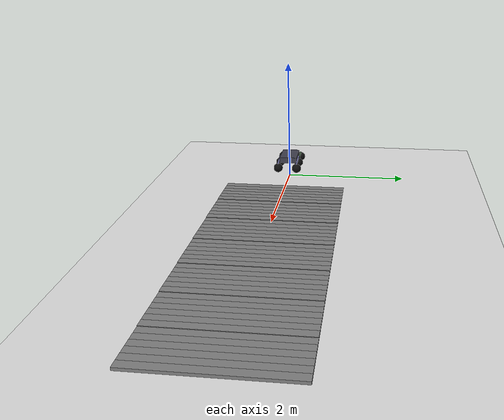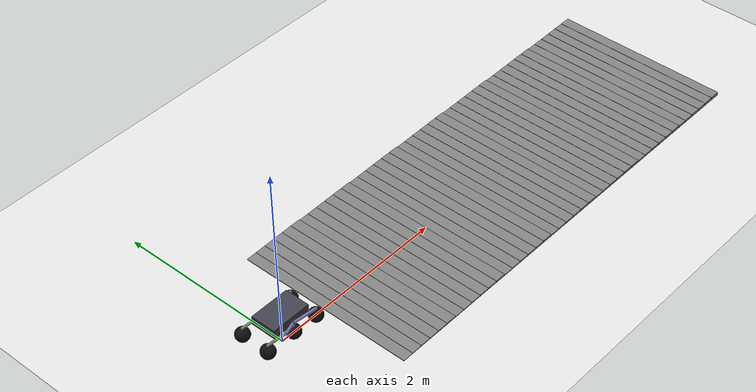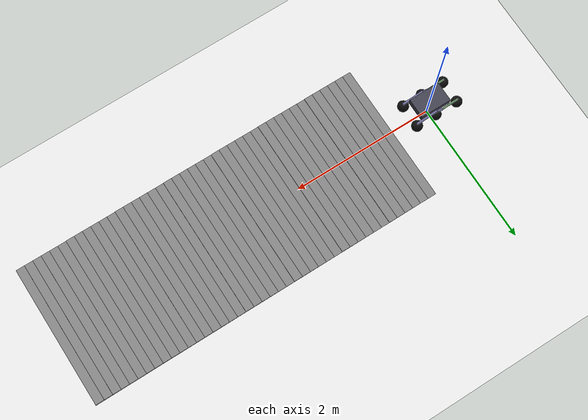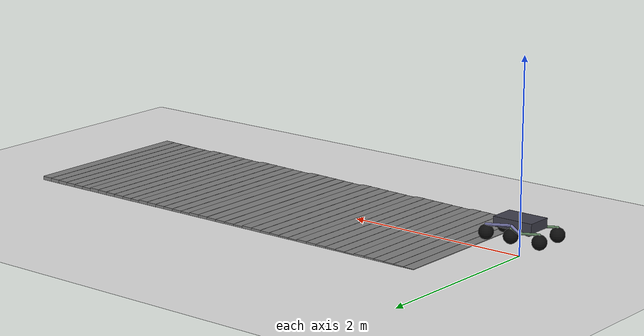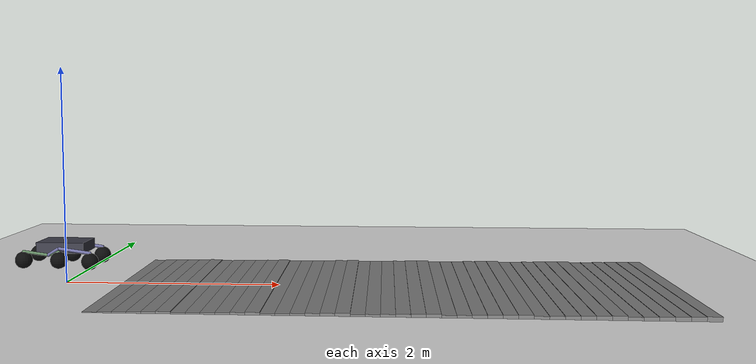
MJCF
<mujoco model="scene_saw">
  <compiler angle="degree" inertiafromgeom="true"/>
  <option timestep="0.002" gravity="0 0 -9.81"/>

  <include file="rover.xml"/>

  <worldbody>
    <geom name="floor" type="plane" size="30 30 0.1" pos="0 0 0"
          contype="1" conaffinity="1"
          friction="1.2 0.01 0.0001"
          rgba="0.88 0.88 0.88 1"/>

    <body name="saw" pos="0 0 0">

      <geom type="box" pos="0.60 0 0.00345" size="0.06 1.0 0.00345"
            contype="1" conaffinity="1" friction="1.0 0.01 0.0001"/>
      <geom type="box" pos="0.72 0 0.00466" size="0.06 1.0 0.00466"
            contype="1" conaffinity="1" friction="1.0 0.01 0.0001"/>
      <geom type="box" pos="0.84 0 0.00587" size="0.06 1.0 0.00587"
            contype="1" conaffinity="1" friction="1.0 0.01 0.0001"/>
      <geom type="box" pos="0.96 0 0.00707" size="0.06 1.0 0.00707"
            contype="1" conaffinity="1" friction="1.0 0.01 0.0001"/>
      <geom type="box" pos="1.08 0 0.00828" size="0.06 1.0 0.00828"
            contype="1" conaffinity="1" friction="1.0 0.01 0.0001"/>
      <geom type="box" pos="1.20 0 0.00949" size="0.06 1.0 0.00949"
            contype="1" conaffinity="1" friction="1.0 0.01 0.0001"/>

      <geom type="box" pos="1.32 0 0.00518" size="0.06 1.0 0.00518"
            contype="1" conaffinity="1" friction="1.0 0.01 0.0001"/>
      <geom type="box" pos="1.44 0 0.00638" size="0.06 1.0 0.00638"
            contype="1" conaffinity="1" friction="1.0 0.01 0.0001"/>
      <geom type="box" pos="1.56 0 0.00759" size="0.06 1.0 0.00759"
            contype="1" conaffinity="1" friction="1.0 0.01 0.0001"/>
      <geom type="box" pos="1.68 0 0.00880" size="0.06 1.0 0.00880"
            contype="1" conaffinity="1" friction="1.0 0.01 0.0001"/>
      <geom type="box" pos="1.80 0 0.01001" size="0.06 1.0 0.01001"
            contype="1" conaffinity="1" friction="1.0 0.01 0.0001"/>
      <geom type="box" pos="1.92 0 0.01121" size="0.06 1.0 0.01121"
            contype="1" conaffinity="1" friction="1.0 0.01 0.0001"/>

      <geom type="box" pos="2.04 0 0.00690" size="0.06 1.0 0.00690"
            contype="1" conaffinity="1" friction="1.0 0.01 0.0001"/>
      <geom type="box" pos="2.16 0 0.00811" size="0.06 1.0 0.00811"
            contype="1" conaffinity="1" friction="1.0 0.01 0.0001"/>
      <geom type="box" pos="2.28 0 0.00932" size="0.06 1.0 0.00932"
            contype="1" conaffinity="1" friction="1.0 0.01 0.0001"/>
      <geom type="box" pos="2.40 0 0.01052" size="0.06 1.0 0.01052"
            contype="1" conaffinity="1" friction="1.0 0.01 0.0001"/>
      <geom type="box" pos="2.52 0 0.01173" size="0.06 1.0 0.01173"
            contype="1" conaffinity="1" friction="1.0 0.01 0.0001"/>
      <geom type="box" pos="2.64 0 0.01294" size="0.06 1.0 0.01294"
            contype="1" conaffinity="1" friction="1.0 0.01 0.0001"/>

      <geom type="box" pos="2.76 0 0.00863" size="0.06 1.0 0.00863"
            contype="1" conaffinity="1" friction="1.0 0.01 0.0001"/>
      <geom type="box" pos="2.88 0 0.00983" size="0.06 1.0 0.00983"
            contype="1" conaffinity="1" friction="1.0 0.01 0.0001"/>
      <geom type="box" pos="3.00 0 0.01104" size="0.06 1.0 0.01104"
            contype="1" conaffinity="1" friction="1.0 0.01 0.0001"/>
      <geom type="box" pos="3.12 0 0.01225" size="0.06 1.0 0.01225"
            contype="1" conaffinity="1" friction="1.0 0.01 0.0001"/>
      <geom type="box" pos="3.24 0 0.01346" size="0.06 1.0 0.01346"
            contype="1" conaffinity="1" friction="1.0 0.01 0.0001"/>
      <geom type="box" pos="3.36 0 0.01466" size="0.06 1.0 0.01466"
            contype="1" conaffinity="1" friction="1.0 0.01 0.0001"/>

      <geom type="box" pos="3.48 0 0.01035" size="0.06 1.0 0.01035"
            contype="1" conaffinity="1" friction="1.0 0.01 0.0001"/>
      <geom type="box" pos="3.60 0 0.01156" size="0.06 1.0 0.01156"
            contype="1" conaffinity="1" friction="1.0 0.01 0.0001"/>
      <geom type="box" pos="3.72 0 0.01277" size="0.06 1.0 0.01277"
            contype="1" conaffinity="1" friction="1.0 0.01 0.0001"/>
      <geom type="box" pos="3.84 0 0.01397" size="0.06 1.0 0.01397"
            contype="1" conaffinity="1" friction="1.0 0.01 0.0001"/>
      <geom type="box" pos="3.96 0 0.01518" size="0.06 1.0 0.01518"
            contype="1" conaffinity="1" friction="1.0 0.01 0.0001"/>
      <geom type="box" pos="4.08 0 0.01639" size="0.06 1.0 0.01639"
            contype="1" conaffinity="1" friction="1.0 0.01 0.0001"/>

      <geom type="box" pos="4.20 0 0.01208" size="0.06 1.0 0.01208"
            contype="1" conaffinity="1" friction="1.0 0.01 0.0001"/>
      <geom type="box" pos="4.32 0 0.01328" size="0.06 1.0 0.01328"
            contype="1" conaffinity="1" friction="1.0 0.01 0.0001"/>
      <geom type="box" pos="4.44 0 0.01449" size="0.06 1.0 0.01449"
            contype="1" conaffinity="1" friction="1.0 0.01 0.0001"/>
      <geom type="box" pos="4.56 0 0.01570" size="0.06 1.0 0.01570"
            contype="1" conaffinity="1" friction="1.0 0.01 0.0001"/>
      <geom type="box" pos="4.68 0 0.01691" size="0.06 1.0 0.01691"
            contype="1" conaffinity="1" friction="1.0 0.01 0.0001"/>
      <geom type="box" pos="4.80 0 0.01811" size="0.06 1.0 0.01811"
            contype="1" conaffinity="1" friction="1.0 0.01 0.0001"/>

      <geom type="box" pos="4.92 0 0.01380" size="0.06 1.0 0.01380"
            contype="1" conaffinity="1" friction="1.0 0.01 0.0001"/>
      <geom type="box" pos="5.04 0 0.01501" size="0.06 1.0 0.01501"
            contype="1" conaffinity="1" friction="1.0 0.01 0.0001"/>
      <geom type="box" pos="5.16 0 0.01622" size="0.06 1.0 0.01622"
            contype="1" conaffinity="1" friction="1.0 0.01 0.0001"/>
      <geom type="box" pos="5.28 0 0.01742" size="0.06 1.0 0.01742"
            contype="1" conaffinity="1" friction="1.0 0.01 0.0001"/>
      <geom type="box" pos="5.40 0 0.01863" size="0.06 1.0 0.01863"
            contype="1" conaffinity="1" friction="1.0 0.01 0.0001"/>
      <geom type="box" pos="5.52 0 0.01984" size="0.06 1.0 0.01984"
            contype="1" conaffinity="1" friction="1.0 0.01 0.0001"/>
    </body>

    <light pos="0 0 3" dir="0 0 -1" diffuse="1 1 1"/>
    <camera name="main" pos="2.6 -2.6 1.35" xyaxes="0.7 0.7 0  -0.2 0.2 0.96"/>
  </worldbody>
</mujoco>

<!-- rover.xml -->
<mujoco model="rocker_bogie">
  <compiler angle="degree" inertiafromgeom="true" autolimits="true"/>
  <option timestep="0.002" gravity="0 0 -9.81" solver="Newton" iterations="120"/>

  <default>
    <geom condim="4" friction="1.3 0.01 0.0001" solref="0.004 1" solimp="0.95 0.99 0.001"
          contype="0" conaffinity="0"/>
    <joint damping="2" armature="0.02" limited="false"/>
  </default>

  <asset>
    <material name="mat_chassis" rgba="0.25 0.25 0.30 1"/>
    <material name="mat_rocker"  rgba="0.45 0.45 0.65 1"/>
    <material name="mat_bogie"   rgba="0.40 0.55 0.40 1"/>
    <material name="mat_wheel"   rgba="0.05 0.05 0.05 1"/>
    <material name="mat_skid"    rgba="0.20 0.20 0.20 0.6"/>
  </asset>

  <worldbody>
    <body name="chassis" pos="0 0 0.35">
      <joint name="slide_x" type="slide" axis="1 0 0" damping="1.0"/>
      <joint name="slide_y" type="slide" axis="0 1 0" damping="1.0"/>
      <joint name="slide_z" type="slide" axis="0 0 1" damping="2.0"/>

      <joint name="roll"  type="hinge" axis="1 0 0" damping="4.0" limited="true" range="-20 20"/>
      <joint name="pitch" type="hinge" axis="0 1 0" damping="4.0" limited="true" range="-20 20"/>
      <joint name="yaw"   type="hinge" axis="0 0 1" damping="1.0"/>

      <inertial pos="0 0 -0.03" mass="8.0" diaginertia="0.25 0.55 0.55"/>

      <!-- кузов визуальный, НЕ контактит -->
      <geom type="box" size="0.22 0.14 0.05" material="mat_chassis"
            contype="0" conaffinity="0"/>

      <!-- ========== LEFT ========== -->
      <body name="rocker_L" pos="0 0.16 0">
        <joint name="rocker_L_j" type="hinge" axis="0 1 0" damping="8" limited="true" range="-35 35"/>

        <geom type="capsule" fromto="0 0 0   0.288 0 -0.04" size="0.015" density="500"
              material="mat_rocker" contype="0" conaffinity="0"/>
        <geom type="capsule" fromto="0 0 0   -0.096 0 -0.06" size="0.015" density="500"
              material="mat_rocker" contype="0" conaffinity="0"/>

        <body name="wheel_front_L" pos="0.288 0 -0.116">
          <joint name="wheel_front_L_j" type="hinge" axis="0 1 0" damping="0.4" armature="0.01"/>
          <geom type="sphere" size="0.076" material="mat_wheel"
                contype="1" conaffinity="1"/>
        </body>

        <body name="bogie_L" pos="-0.096 0 -0.06">
          <joint name="bogie_L_j" type="hinge" axis="0 1 0" damping="10" limited="true" range="-70 70"/>

          <geom type="capsule" fromto="0 0 0   0.096 0 0.03" size="0.013" density="550"
                material="mat_bogie" contype="0" conaffinity="0"/>
          <geom type="capsule" fromto="0 0 0   -0.232 0 0.03" size="0.013" density="550"
                material="mat_bogie" contype="0" conaffinity="0"/>

          <body name="wheel_mid_L" pos="0.096 0 -0.046">
            <joint name="wheel_mid_L_j" type="hinge" axis="0 1 0" damping="0.4" armature="0.01"/>
            <geom type="sphere" size="0.076" material="mat_wheel"
                  contype="1" conaffinity="1"/>
          </body>

          <body name="wheel_rear_L" pos="-0.232 0 -0.046">
            <joint name="wheel_rear_L_j" type="hinge" axis="0 1 0" damping="0.4" armature="0.01"/>
            <geom type="sphere" size="0.076" material="mat_wheel"
                  contype="1" conaffinity="1"/>
          </body>
        </body>
      </body>

      <!-- ========== RIGHT ========== -->
      <body name="rocker_R" pos="0 -0.16 0">
        <joint name="rocker_R_j" type="hinge" axis="0 1 0" damping="8" limited="true" range="-35 35"/>

        <geom type="capsule" fromto="0 0 0   0.288 0 -0.04" size="0.015" density="500"
              material="mat_rocker" contype="0" conaffinity="0"/>
        <geom type="capsule" fromto="0 0 0   -0.096 0 -0.06" size="0.015" density="500"
              material="mat_rocker" contype="0" conaffinity="0"/>

        <body name="wheel_front_R" pos="0.288 0 -0.116">
          <joint name="wheel_front_R_j" type="hinge" axis="0 1 0" damping="0.4" armature="0.01"/>
          <geom type="sphere" size="0.076" material="mat_wheel"
                contype="1" conaffinity="1"/>
        </body>

        <body name="bogie_R" pos="-0.096 0 -0.06">
          <joint name="bogie_R_j" type="hinge" axis="0 1 0" damping="10" limited="true" range="-70 70"/>

          <geom type="capsule" fromto="0 0 0   0.096 0 0.03" size="0.013" density="550"
                material="mat_bogie" contype="0" conaffinity="0"/>
          <geom type="capsule" fromto="0 0 0   -0.232 0 0.03" size="0.013" density="550"
                material="mat_bogie" contype="0" conaffinity="0"/>

          <body name="wheel_mid_R" pos="0.096 0 -0.046">
            <joint name="wheel_mid_R_j" type="hinge" axis="0 1 0" damping="0.4" armature="0.01"/>
            <geom type="sphere" size="0.076" material="mat_wheel"
                  contype="1" conaffinity="1"/>
          </body>

          <body name="wheel_rear_R" pos="-0.232 0 -0.046">
            <joint name="wheel_rear_R_j" type="hinge" axis="0 1 0" damping="0.4" armature="0.01"/>
            <geom type="sphere" size="0.076" material="mat_wheel"
                  contype="1" conaffinity="1"/>
          </body>
        </body>
      </body>

    </body>
  </worldbody>

  <actuator>
    <position name="diff_pitch" joint="pitch" kp="900" kv="80" forcerange="-250 250"/>
    <position name="diff_roll"  joint="roll"  kp="900" kv="80" forcerange="-250 250"/>

    <motor joint="wheel_front_L_j" gear="40"/>
    <motor joint="wheel_mid_L_j"   gear="40"/>
    <motor joint="wheel_rear_L_j"  gear="40"/>
    <motor joint="wheel_front_R_j" gear="40"/>
    <motor joint="wheel_mid_R_j"   gear="40"/>
    <motor joint="wheel_rear_R_j"  gear="40"/>
  </actuator>
</mujoco>
